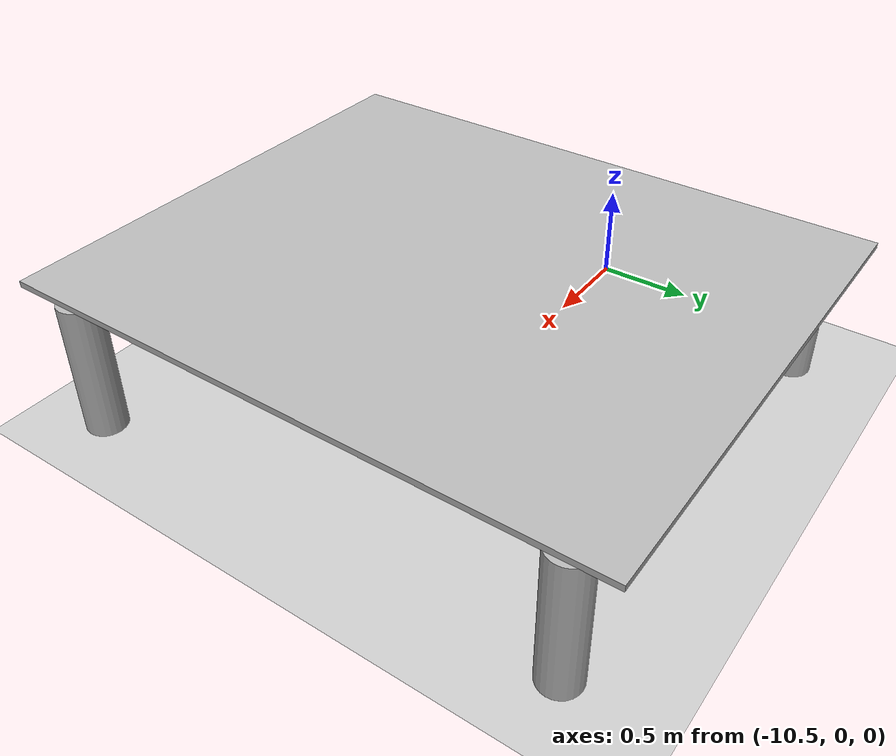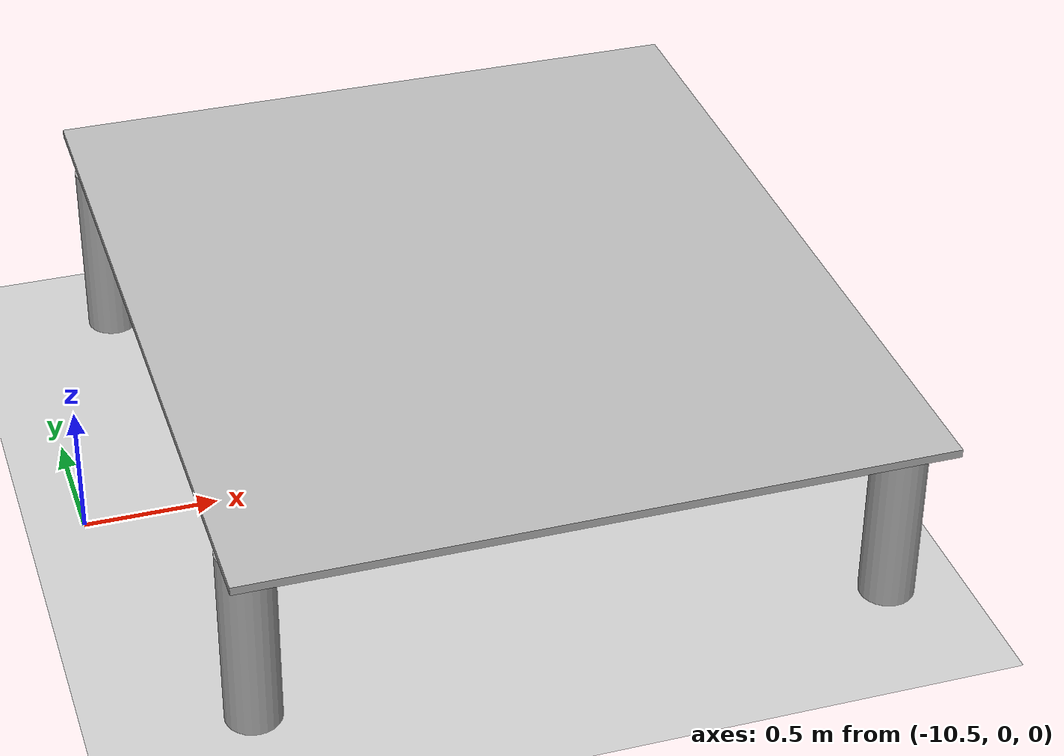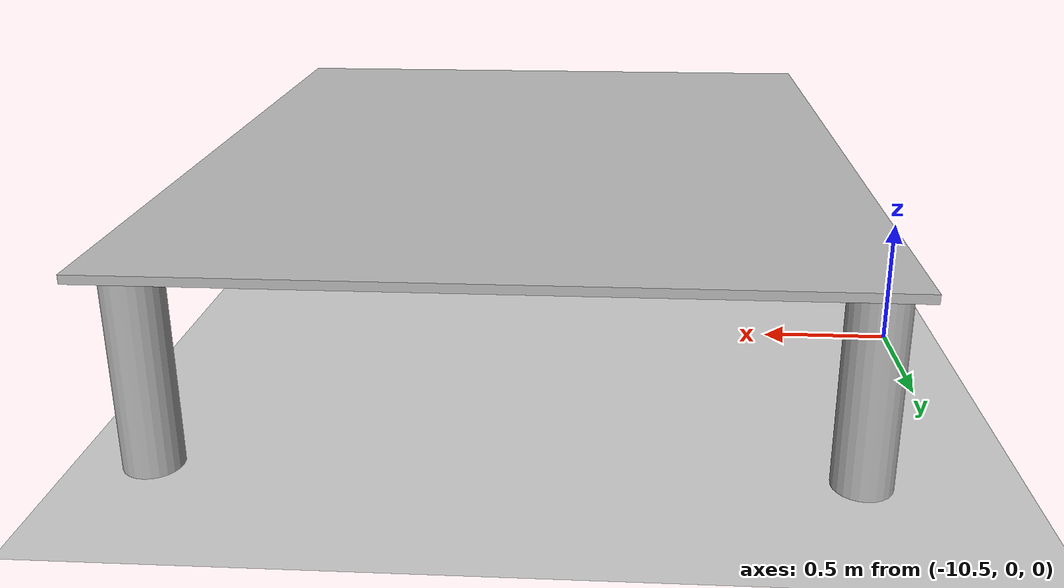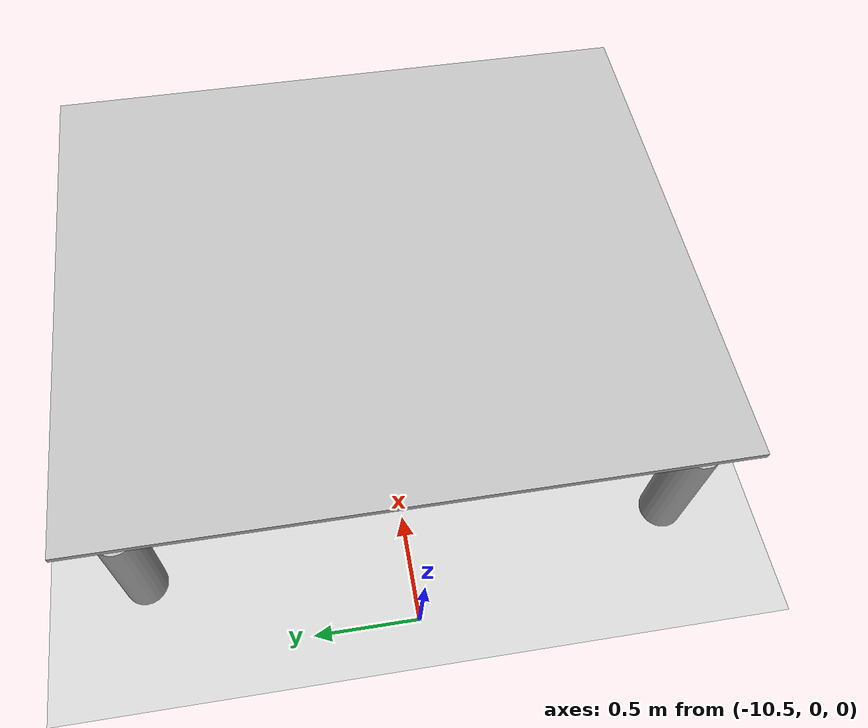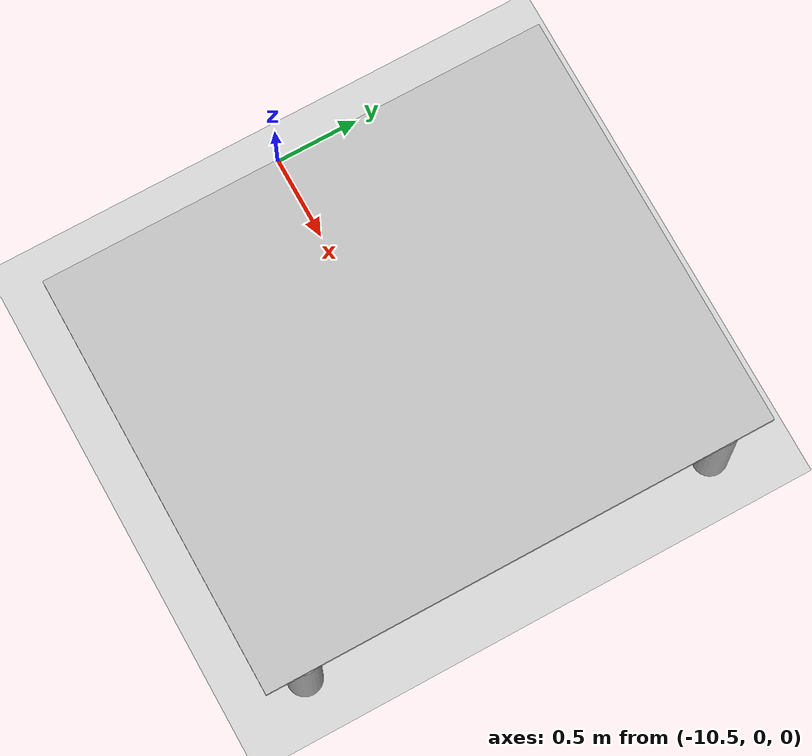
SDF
<sdf version="1.6">
 <world name="default">
  <light name="sun" type="directional">
   <pose>0 0 10 0 -0 0</pose>
   <diffuse>0.8 0.8 0.8 1</diffuse>
   <specular>0.1 0.1 0.1 1</specular>
   <attenuation>
    <range>1000</range>
    <constant>0.9</constant>
    <linear>0.01</linear>
    <quadratic>0.001</quadratic>
   </attenuation>
   <direction>-0.5 0.5 -1</direction>
  </light>
  <model name="ground_plane">
   <static>1</static>
   <link name="link">
    <collision name="collision">
     <geometry><plane><normal>0 0 1</normal><size>100 100</size></plane></geometry>
     <surface><friction><ode><mu>100</mu><mu2>50</mu2></ode></friction></surface>
    </collision>
    <visual name="visual">
     <cast_shadows>0</cast_shadows>
     <geometry><plane><normal>0 0 1</normal><size>100 100</size></plane></geometry>
    </visual>
   </link>
  </model>
  <gravity>0 0 -9.8</gravity>
  <magnetic_field>6e-06 2.3e-05 -4.2e-05</magnetic_field>
  <atmosphere type="adiabatic"/>
  <physics name="default_physics" default="0" type="ode">
   <max_step_size>0.001</max_step_size>
   <real_time_factor>1</real_time_factor>
   <real_time_update_rate>1000</real_time_update_rate>
  </physics>
  <scene><ambient>0.4 0.4 0.4 1</ambient><background>0.7 0.7 0.7 1</background><shadows>1</shadows></scene>
  <spherical_coordinates>
   <surface_model>EARTH_WGS84</surface_model>
   <latitude_deg>0</latitude_deg>
   <longitude_deg>0</longitude_deg>
   <elevation>0</elevation>
   <heading_deg>0</heading_deg>
  </spherical_coordinates>
  <model name="table">
   <static>1</static>
   <link name="link">
    <collision name="surface">
     <pose>0 0 0.8 0 -0 1.57</pose>
     <geometry><box><size>3 2.5 0.03</size></box></geometry>
     <surface><friction><ode><mu>0.6</mu><mu2>0.6</mu2></ode></friction></surface>
    </collision>
    <visual name="visual1">
     <pose>0 0 0.8 0 -0 1.57</pose>
     <geometry><box><size>3 2.5 0.03</size></box></geometry>
     <material>Gazebo/Blue</material>
    </visual>
    <collision name="front_left_leg">
     <pose>1.15 1.25 0.4 0 -0 0</pose>
     <geometry><cylinder><radius>0.1</radius><length>0.7</length></cylinder></geometry>
    </collision>
    <visual name="front_left_leg">
     <pose>1.15 1.25 0.4 0 -0 0</pose>
     <geometry><cylinder><radius>0.1</radius><length>0.7</length></cylinder></geometry>
     <material>Gazebo/Brown</material>
    </visual>
    <collision name="front_right_leg">
     <pose>-1.15 1.25 0.4 0 -0 0</pose>
     <geometry><cylinder><radius>0.1</radius><length>0.7</length></cylinder></geometry>
    </collision>
    <visual name="front_right_leg">
     <pose>-1.15 1.25 0.4 0 -0 0</pose>
     <geometry><cylinder><radius>0.1</radius><length>0.7</length></cylinder></geometry>
     <material>Gazebo/Brown</material>
    </visual>
    <collision name="back_right_leg">
     <pose>1.15 -1.25 0.4 0 -0 0</pose>
     <geometry><cylinder><radius>0.1</radius><length>0.7</length></cylinder></geometry>
    </collision>
    <visual name="back_right_leg">
     <pose>1.15 -1.25 0.4 0 -0 0</pose>
     <geometry><cylinder><radius>0.1</radius><length>0.7</length></cylinder></geometry>
     <material>Gazebo/Brown</material>
    </visual>
    <collision name="back_left_leg">
     <pose>-1.15 -1.25 0.4 0 -0 0</pose>
     <geometry><cylinder><radius>0.1</radius><length>0.7</length></cylinder></geometry>
    </collision>
    <visual name="back_left_leg">
     <pose>-1.15 -1.25 0.4 0 -0 0</pose>
     <geometry><cylinder><radius>0.1</radius><length>0.7</length></cylinder></geometry>
     <material>Gazebo/Brown</material>
    </visual>
   </link>
   <pose>-9.00301 -0.005739 0 0 -0 0</pose>
  </model>
 </world>
</sdf>
